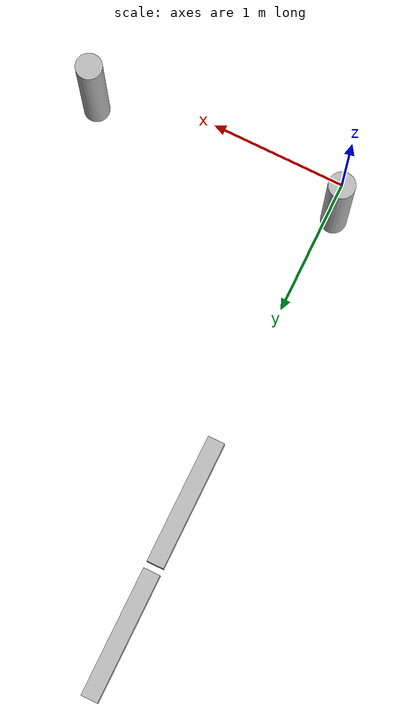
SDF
<?xml version="1.0" ?>
<sdf version="1.3">
    <world name="default">
        <physics type="ode">
            <gravity>0 0 0</gravity>
            <update_rate>1000</update_rate>
            <ode>
                <solver>
                    <type>quick</type>
                    <dt>0.001</dt>
                    <iters>1000</iters>
                    <sor>1.0</sor>
                </solver>
                <constraints>
                    <cfm>0.0</cfm>
                    <erp>0.2</erp>
                    <contact_max_correcting_vel>100.0</contact_max_correcting_vel>
                    <contact_surface_layer>0.0</contact_surface_layer>
                </constraints>
            </ode>
        </physics>
        <!-- A global light source -->
        <include>
            <uri>model://sun</uri>
        </include>
        <model name="model_1">
            <pose>0 0 0 0 0 0</pose>
            <link name="link_1">
                <pose>0 0 0 0 0 0</pose>
                <inertial>
                    <pose>0 0 0 0 0 0</pose>
                    <inertia>
                        <ixx>200.000000</ixx>
                        <ixy>0.000000</ixy>
                        <ixz>0.000000</ixz>
                        <iyy>300.000000</iyy>
                        <iyz>0.000000</iyz>
                        <izz>400.000000</izz>
                    </inertia>
                    <mass>1.000000</mass>
                </inertial>
                <visual name="visual_cylinder">
                    <pose>0 0 -0.5 0 0 0</pose>
                    <geometry>
                        <cylinder>
                            <radius>0.100000</radius>
                            <length>1.000000</length>
                        </cylinder>
                    </geometry>
                    <material>
                        <script>Gazebo/Green</script>
                    </material>
                </visual>
                <collision name="collision_cylinder">
                    <pose>0 0 -0.5 0 0 0</pose>
                    <geometry>
                        <cylinder>
                            <radius>0.100000</radius>
                            <length>1.000000</length>
                        </cylinder>
                    </geometry>
                </collision>
            </link>
            <joint name="joint_01" type="revolute">
              <parent>world</parent>
              <child>link_1</child>
              <pose>0 0 0 0 0 0</pose>
              <axis>
                <limit>
                  <effort>1000.000000</effort>
                  <velocity>1000.000000</velocity>
                </limit>
                <dynamics>
                  <damping>0.000000</damping>
                  <friction>0.000000</friction>
                </dynamics>
                <xyz>1.000000 0.000000 0.000000</xyz>
              </axis>
              <physics>
                <provide_feedback>true</provide_feedback>
              </physics>
            </joint>
            <static>0</static>
        </model>
        <model name="model_2">
            <pose>2 0 0 0 0 0</pose>
            <link name="link_1">
                <pose>0 0 0 0 0 0</pose>
                <inertial>
                    <pose>0 0 0 0 0 0</pose>
                    <inertia>
                        <ixx>200.000000</ixx>
                        <ixy>0.000000</ixy>
                        <ixz>0.000000</ixz>
                        <iyy>300.000000</iyy>
                        <iyz>0.000000</iyz>
                        <izz>400.000000</izz>
                    </inertia>
                    <mass>1.000000</mass>
                </inertial>
                <visual name="visual_cylinder">
                    <pose>0 0 -0.5 0 0 0</pose>
                    <geometry>
                        <cylinder>
                            <radius>0.100000</radius>
                            <length>1.000000</length>
                        </cylinder>
                    </geometry>
                    <material>
                        <script>Gazebo/Green</script>
                    </material>
                </visual>
                <collision name="collision_cylinder">
                    <pose>0 0 -0.5 0 0 0</pose>
                    <geometry>
                        <cylinder>
                            <radius>0.100000</radius>
                            <length>1.000000</length>
                        </cylinder>
                    </geometry>
                </collision>
            </link>
            <joint name="joint_01" type="revolute">
              <parent>world</parent>
              <child>link_1</child>
              <pose>0 0 0 0 0 0</pose>
              <axis>
                <limit>
                  <effort>1000.000000</effort>
                  <velocity>1000.000000</velocity>
                </limit>
                <dynamics>
                  <damping>0.000000</damping>
                  <friction>0.000000</friction>
                </dynamics>
                <xyz>0.000000 0.000000 1.000000</xyz>
              </axis>
              <physics>
                <provide_feedback>true</provide_feedback>
              </physics>
            </joint>
            <static>0</static>
        </model>
        <model name="model_3">
            <pose>0 2 0 0 0 0</pose>
            <link name="link_1">
                <visual name="link_1_box">
                    <pose>0 0.5 0 0 0 0</pose>
                    <geometry>
                        <box>
                            <size>0.125 0.95 0.125</size>
                        </box>
                    </geometry>
                </visual>
            </link>
            <link name="link_2">
                <visual name="link_2_visual">
                    <pose>0 1.5 0 0 0 0</pose>
                    <geometry>
                        <box>
                            <size>0.125 0.95 0.125</size>
                        </box>
                    </geometry>
                </visual>
            </link>
            <joint name="joint_1" type="revolute">
                <parent>world</parent>
                <child>link_1</child>
                <axis>
                    <xyz>0 0 1</xyz>
                    <initial_position>0.7854</initial_position>
                </axis>
            </joint>
            <joint name="joint_2" type="revolute">
                <parent>link_1</parent>
                <child>link_2</child>
                <axis>
                    <xyz>0 0 1</xyz>
                    <initial_position>1.5707</initial_position>
                </axis>
                <pose>0 1 0 0 0 0</pose>
            </joint>
        </model>
    </world>
</sdf>
